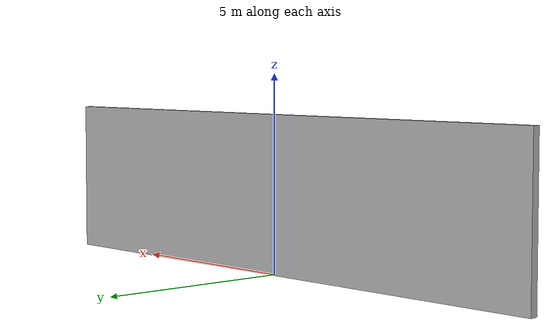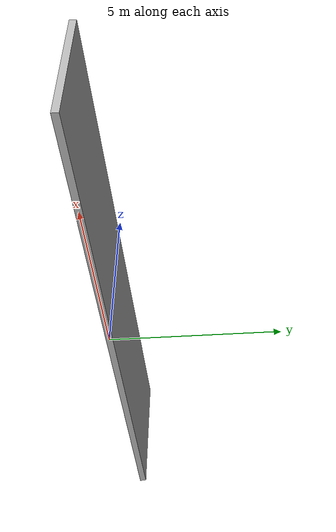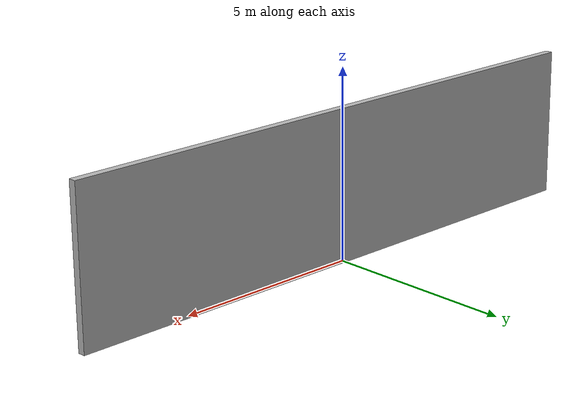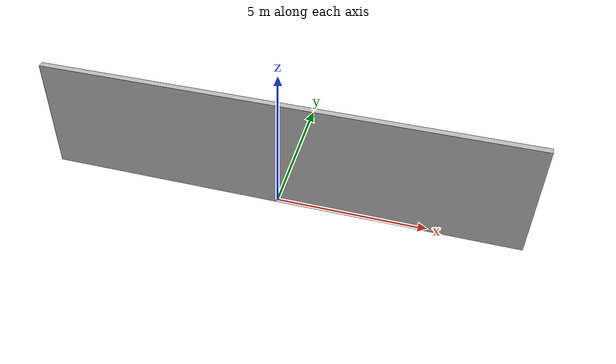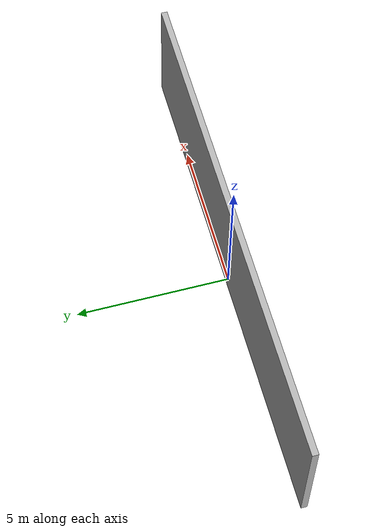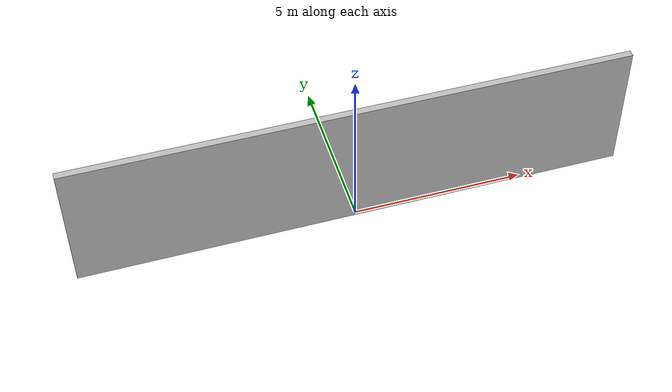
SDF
<?xml version="1.0" ?>
<sdf version="1.5">
  <model name="wall_matt_int">
    <static>true</static>
    <link name="link">
      <pose>0 0 2 0 0 0</pose>
      <collision name="collision">
        <geometry>
          <box>
            <size>16 0.2 4</size>
          </box>
        </geometry>
      </collision>
      <visual name="visual">
        <cast_shadows>false</cast_shadows>
        <geometry>
          <box>
            <size>16 0.2 4</size>
          </box>
        </geometry>
        <material>
          <script>
            <uri>model://extwall/materials/scripts</uri>
            <uri>model://extwall/materials/textures</uri>
            <name>vrc/wall_matt</name>
          </script>
        </material>
      </visual>
    </link>
  </model>
</sdf>
